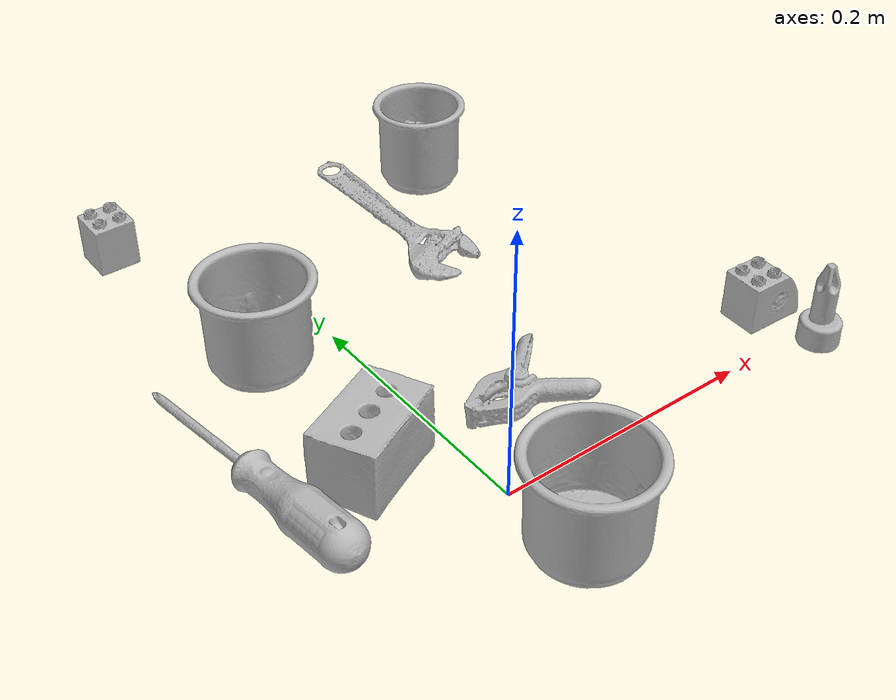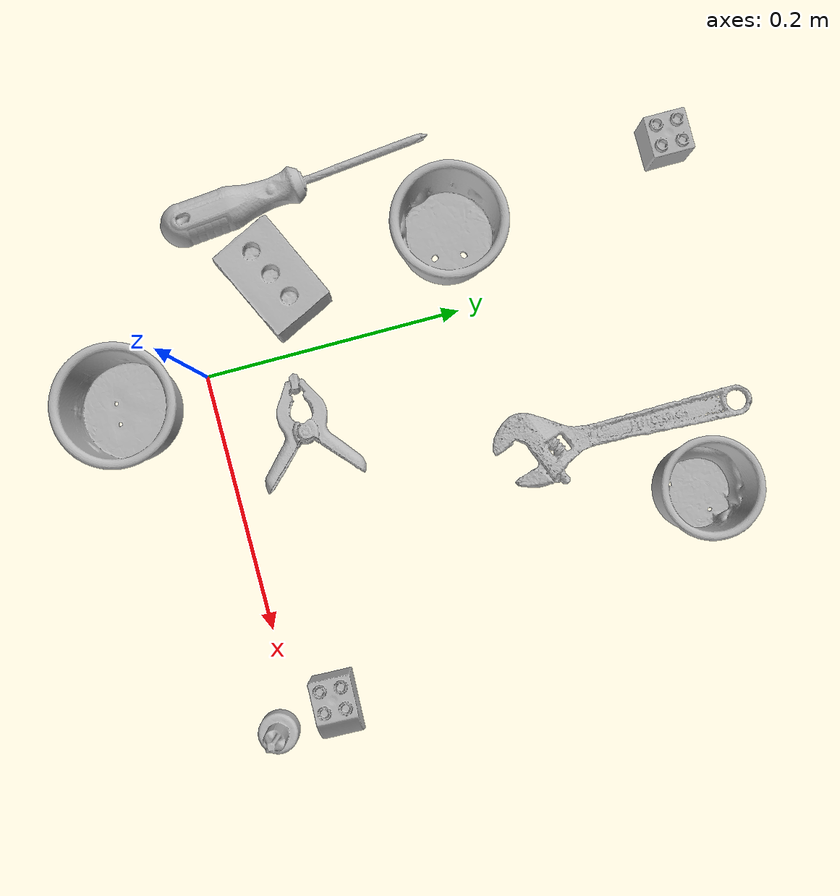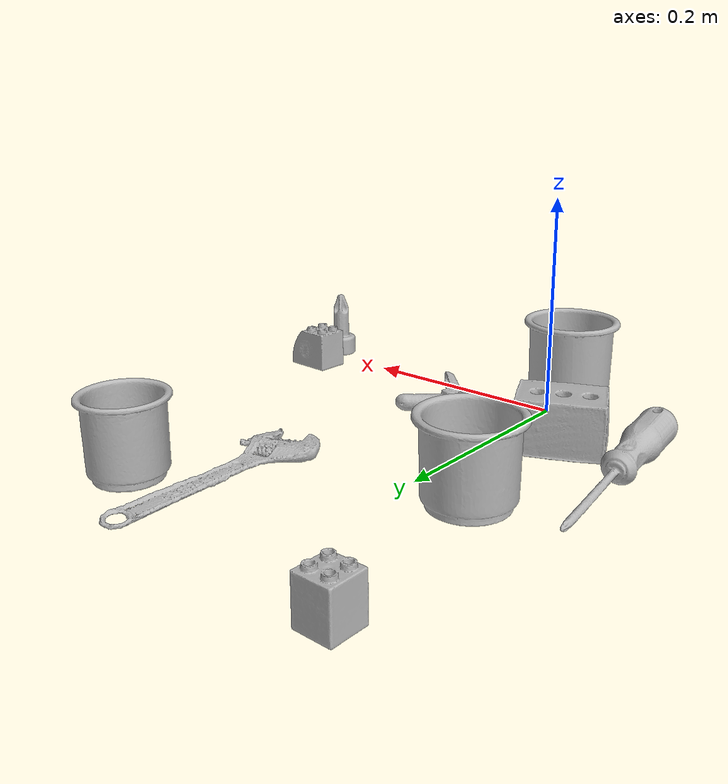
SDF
<sdf version="1.4">
  <world name="default">
    <light name="light1" type="point">
      <pose>0 0 1 0 0 0</pose>
      <diffuse>3 3 3 1</diffuse>
      <specular>3 3 3 1</specular>
    </light>
    <light name="light2" type="point">
      <pose>0 0.5 2 0 0 0</pose>
      <diffuse>1 1 1 1</diffuse>
      <specular>1 1 1 1</specular>
    </light>
    <light name="light3" type="point">
      <pose>0 0.5 2 0 0 0</pose>
      <diffuse>3 3 3 1</diffuse>
      <specular>3 3 3 1</specular>
    </light>
    <scene>
      <ambient>0.7 0.7 0.7</ambient>
    </scene>
    <model name="cup1">
      <link name="link_cup1">
        <collision name="default">
          <geometry>
            <mesh>
              <uri>model://h_cups/collision_meshes/collision.obj</uri>
              <scale>1.0 1.0 1.0</scale>
            </mesh>
          </geometry>
          <surface>
            <friction>
              <ode>
                <mu>0.5</mu>
                <mu2>0.5</mu2>
              </ode>
            </friction>
          <contact>
        <ode>
            <max_vel>0</max_vel>
            <min_depth>0.0001</min_depth>
            <kp>1e8</kp>
        </ode>
    </contact></surface>
        </collision>
        <visual name="default">
          <geometry>
            <mesh>
              <uri>model://h_cups/visual_meshes/visual.dae</uri>
              <scale>1.0 1.0 1.0</scale>
            </mesh>
          </geometry>
        </visual>
        <inertial>
          <mass>0.09017354249954224</mass>
          <pose>-2.702734127524309e-05 0.00023018653155304492 -0.0018405391601845622 -0.024362361674121313 0.06545247408237653 0.12884890922354367</pose>
          <inertia>
            <ixx>0.00011645493</ixx>
            <iyy>0.000115065246</iyy>
            <izz>0.00012212929</izz>
            <ixy>0</ixy>
            <ixz>0</ixz>
            <iyz>0</iyz>
          </inertia>
        </inertial>
      </link>
      <pose>0.011280590668320656 -0.06068877875804901 0.037757985293865204 -2.1988300936124287e-08 -3.644768022607362e-08 1.4375406145162852</pose>
    </model>
    <model name="cup2">
      <link name="link_cup2">
        <collision name="default">
          <geometry>
            <mesh>
              <uri>model://g_cups/collision_meshes/collision.obj</uri>
              <scale>1.0 1.0 1.0</scale>
            </mesh>
          </geometry>
          <surface>
            <friction>
              <ode>
                <mu>0.5</mu>
                <mu2>0.5</mu2>
              </ode>
            </friction>
          <contact>
        <ode>
            <max_vel>0</max_vel>
            <min_depth>0.0001</min_depth>
            <kp>1e8</kp>
        </ode>
    </contact></surface>
        </collision>
        <visual name="default">
          <geometry>
            <mesh>
              <uri>model://g_cups/visual_meshes/visual.dae</uri>
              <scale>1.0 1.0 1.0</scale>
            </mesh>
          </geometry>
        </visual>
        <inertial>
          <mass>0.07892031967639923</mass>
          <pose>-0.0007946275873109698 -4.206384619465098e-05 -0.0021329368464648724 -0.21381953376637775 -0.31410844314425407 0.31119468358147234</pose>
          <inertia>
            <ixx>9.211769e-05</ixx>
            <iyy>9.180432e-05</iyy>
            <izz>9.541806e-05</izz>
            <ixy>0</ixy>
            <ixz>0</ixz>
            <iyz>0</iyz>
          </inertia>
        </inertial>
      </link>
      <pose>-0.056018054485321045 0.20577166974544525 0.037202995270490646 -1.3800494776749856e-07 -6.885260028406047e-07 1.3193647543656402</pose>
    </model>
    <model name="cup3">
      <link name="link_cup3">
        <collision name="default">
          <geometry>
            <mesh>
              <uri>model://e_cups/collision_meshes/collision.obj</uri>
              <scale>1.0 1.0 1.0</scale>
            </mesh>
          </geometry>
          <surface>
            <friction>
              <ode>
                <mu>0.5</mu>
                <mu2>0.5</mu2>
              </ode>
            </friction>
          <contact>
        <ode>
            <max_vel>0</max_vel>
            <min_depth>0.0001</min_depth>
            <kp>1e8</kp>
        </ode>
    </contact></surface>
        </collision>
        <visual name="default">
          <geometry>
            <mesh>
              <uri>model://e_cups/visual_meshes/visual.dae</uri>
              <scale>1.0 1.0 1.0</scale>
            </mesh>
          </geometry>
        </visual>
        <inertial>
          <mass>0.08743876963853836</mass>
          <pose>0.0011355745373293757 0.0028797851409763098 -0.0038829741533845663 0.6952398618358687 0.08767880823198544 -0.5235243888876825</pose>
          <inertia>
            <ixx>7.709911e-05</ixx>
            <iyy>8.05796e-05</iyy>
            <izz>7.3715666e-05</izz>
            <ixy>0</ixy>
            <ixz>0</ixz>
            <iyz>0</iyz>
          </inertia>
        </inertial>
      </link>
      <pose>0.17816337943077087 0.3377567231655121 0.035599950700998306 2.9069218984948846e-06 -1.6282612310965565e-06 1.110654071683451</pose>
    </model>
    <model name="toy1">
      <link name="link_toy1">
        <collision name="default">
          <geometry>
            <mesh>
              <uri>model://d_lego_duplo/collision_meshes/collision.obj</uri>
              <scale>1.0 1.0 1.0</scale>
            </mesh>
          </geometry>
          <surface>
            <friction>
              <ode>
                <mu>0.5</mu>
                <mu2>0.5</mu2>
              </ode>
            </friction>
          <contact>
        <ode>
            <max_vel>0</max_vel>
            <min_depth>0.0001</min_depth>
            <kp>1e8</kp>
        </ode>
    </contact></surface>
        </collision>
        <visual name="default">
          <geometry>
            <mesh>
              <uri>model://d_lego_duplo/visual_meshes/visual.dae</uri>
              <scale>1.0 1.0 1.0</scale>
            </mesh>
          </geometry>
        </visual>
        <inertial>
          <mass>0.04292278364300728</mass>
          <pose>0.002830562647432089 0.00016366151976399124 0.0008589805802330375 0.08010895821025366 -0.3835521883517419 0.0010296961053417666</pose>
          <inertia>
            <ixx>8.309218e-06</ixx>
            <iyy>1.1793034e-05</iyy>
            <izz>1.1372727e-05</izz>
            <ixy>0</ixy>
            <ixz>0</ixz>
            <iyz>0</iyz>
          </inertia>
        </inertial>
      </link>
      <pose>0.2658791244029999 0.034184087067842484 0.02170780673623085 0.002157465205607535 4.279281584919789e-06 3.109942454804178</pose>
    </model>
    <model name="toy2">
      <link name="link_toy2">
        <collision name="default">
          <geometry>
            <mesh>
              <uri>model://foam_brick/collision_meshes/collision.obj</uri>
              <scale>1.0 1.0 1.0</scale>
            </mesh>
          </geometry>
          <surface>
            <friction>
              <ode>
                <mu>0.5</mu>
                <mu2>0.5</mu2>
              </ode>
            </friction>
          <contact>
        <ode>
            <max_vel>0</max_vel>
            <min_depth>0.0001</min_depth>
            <kp>1e8</kp>
        </ode>
    </contact></surface>
        </collision>
        <visual name="default">
          <geometry>
            <mesh>
              <uri>model://foam_brick/visual_meshes/visual.dae</uri>
              <scale>1.0 1.0 1.0</scale>
            </mesh>
          </geometry>
        </visual>
        <inertial>
          <mass>0.21218973398208618</mass>
          <pose>-0.0002522472059354186 0.00034584320383146405 -0.0002532101352699101 -0.2940188212014215 0.017274433063530492 -0.0007449861184219897</pose>
          <inertia>
            <ixx>9.268843e-05</ixx>
            <iyy>0.00014798183</iyy>
            <izz>0.00014986254</izz>
            <ixy>0</ixy>
            <ixz>0</ixz>
            <iyz>0</iyz>
          </inertia>
        </inertial>
      </link>
      <pose>-0.05515178665518761 0.07009939849376678 0.025922810658812523 0.013416543862815012 0.004152967444597556 -2.700463558379215</pose>
    </model>
    <model name="toy3">
      <link name="link_toy3">
        <collision name="default">
          <geometry>
            <mesh>
              <uri>model://f_lego_duplo/collision_meshes/collision.obj</uri>
              <scale>1.0 1.0 1.0</scale>
            </mesh>
          </geometry>
          <surface>
            <friction>
              <ode>
                <mu>0.5</mu>
                <mu2>0.5</mu2>
              </ode>
            </friction>
          <contact>
        <ode>
            <max_vel>0</max_vel>
            <min_depth>0.0001</min_depth>
            <kp>1e8</kp>
        </ode>
    </contact></surface>
        </collision>
        <visual name="default">
          <geometry>
            <mesh>
              <uri>model://f_lego_duplo/visual_meshes/visual.dae</uri>
              <scale>1.0 1.0 1.0</scale>
            </mesh>
          </geometry>
        </visual>
        <inertial>
          <mass>0.024021470919251442</mass>
          <pose>2.3694197807344608e-05 0.00013393140397965908 0.0018837875686585903 0.02983869554967358 -0.014424868856459862 -0.6756716113514201</pose>
          <inertia>
            <ixx>5.075869e-06</ixx>
            <iyy>5.1210886e-06</iyy>
            <izz>4.4060694e-06</izz>
            <ixy>0</ixy>
            <ixz>0</ixz>
            <iyz>0</iyz>
          </inertia>
        </inertial>
      </link>
      <pose>-0.08349733054637909 0.38389521837234497 0.02187100052833557 5.3625487257185875e-06 6.6216469006562436e-06 1.570802797689281</pose>
    </model>
    <model name="toy4">
      <link name="link_toy4">
        <collision name="default">
          <geometry>
            <mesh>
              <uri>model://d_toy_airplane/collision_meshes/collision.obj</uri>
              <scale>1.0 1.0 1.0</scale>
            </mesh>
          </geometry>
          <surface>
            <friction>
              <ode>
                <mu>0.5</mu>
                <mu2>0.5</mu2>
              </ode>
            </friction>
          <contact>
        <ode>
            <max_vel>0</max_vel>
            <min_depth>0.0001</min_depth>
            <kp>1e8</kp>
        </ode>
    </contact></surface>
        </collision>
        <visual name="default">
          <geometry>
            <mesh>
              <uri>model://d_toy_airplane/visual_meshes/visual.dae</uri>
              <scale>1.0 1.0 1.0</scale>
            </mesh>
          </geometry>
        </visual>
        <inertial>
          <mass>0.024586454033851624</mass>
          <pose>9.410288475919515e-05 -5.809331560158171e-05 -0.011728096753358841 0.0002662237897190017 0.004679022855495211 0.5193045098973154</pose>
          <inertia>
            <ixx>7.370539e-06</ixx>
            <iyy>7.376099e-06</iyy>
            <izz>2.2252145e-06</izz>
            <ixy>0</ixy>
            <ixz>0</ixz>
            <iyz>0</iyz>
          </inertia>
        </inertial>
      </link>
      <pose>0.27456095814704895 -0.01371260266751051 0.03333945944905281 0.00020646780858924106 -2.2670244709572336e-05 1.4302717714765707</pose>
    </model>
    <model name="hardware1">
      <link name="link_hardware1">
        <collision name="default">
          <geometry>
            <mesh>
              <uri>model://phillips_screwdriver/collision_meshes/collision.obj</uri>
              <scale>1.0 1.0 1.0</scale>
            </mesh>
          </geometry>
          <surface>
            <friction>
              <ode>
                <mu>0.5</mu>
                <mu2>0.5</mu2>
              </ode>
            </friction>
          <contact>
        <ode>
            <max_vel>0</max_vel>
            <min_depth>0.0001</min_depth>
            <kp>1e8</kp>
        </ode>
    </contact></surface>
        </collision>
        <visual name="default">
          <geometry>
            <mesh>
              <uri>model://phillips_screwdriver/visual_meshes/visual.dae</uri>
              <scale>1.0 1.0 1.0</scale>
            </mesh>
          </geometry>
        </visual>
        <inertial>
          <mass>0.10962587594985962</mass>
          <pose>-0.04777182266116142 0.0010362300090491772 -0.00045555492397397757 -0.1572763288958183 0.005850995451121224 -0.002156747064170485</pose>
          <inertia>
            <ixx>1.2879916e-05</ixx>
            <iyy>0.00016149164</iyy>
            <izz>0.00016162884</izz>
            <ixy>0</ixy>
            <ixz>0</ixz>
            <iyz>0</iyz>
          </inertia>
        </inertial>
      </link>
      <pose>-0.12472304701805115 0.10129489004611969 0.015485579147934914 -1.694550503558508 0.045438258758472246 1.683226336566492</pose>
    </model>
    <model name="hardware2">
      <link name="link_hardware2">
        <collision name="default">
          <geometry>
            <mesh>
              <uri>model://adjustable_wrench/collision_meshes/collision.obj</uri>
              <scale>1.0 1.0 1.0</scale>
            </mesh>
          </geometry>
          <surface>
            <friction>
              <ode>
                <mu>0.5</mu>
                <mu2>0.5</mu2>
              </ode>
            </friction>
          <contact>
        <ode>
            <max_vel>0</max_vel>
            <min_depth>0.0001</min_depth>
            <kp>1e8</kp>
        </ode>
    </contact></surface>
        </collision>
        <visual name="default">
          <geometry>
            <mesh>
              <uri>model://adjustable_wrench/visual_meshes/visual.dae</uri>
              <scale>1.0 1.0 1.0</scale>
            </mesh>
          </geometry>
        </visual>
        <inertial>
          <mass>0.02999398298561573</mass>
          <pose>0.03740980848670006 -0.002896887483075261 -0.001114922808483243 -0.014473357351062987 0.006656019865341655 -0.010954188906160397</pose>
          <inertia>
            <ixx>6.138701e-06</ixx>
            <iyy>7.184631e-05</iyy>
            <izz>7.765895e-05</izz>
            <ixy>0</ixy>
            <ixz>0</ixz>
            <iyz>0</iyz>
          </inertia>
        </inertial>
      </link>
      <pose>0.12265609204769135 0.2948688268661499 0.0061250487342476845 0.04675842897676713 -0.029270262307962074 -1.6051514239749345</pose>
    </model>
    <model name="hardware3">
      <link name="link_hardware3">
        <collision name="default">
          <geometry>
            <mesh>
              <uri>model://medium_clamp/collision_meshes/collision.obj</uri>
              <scale>1.0 1.0 1.0</scale>
            </mesh>
          </geometry>
          <surface>
            <friction>
              <ode>
                <mu>0.5</mu>
                <mu2>0.5</mu2>
              </ode>
            </friction>
          <contact>
        <ode>
            <max_vel>0</max_vel>
            <min_depth>0.0001</min_depth>
            <kp>1e8</kp>
        </ode>
    </contact></surface>
        </collision>
        <visual name="default">
          <geometry>
            <mesh>
              <uri>model://medium_clamp/visual_meshes/visual.dae</uri>
              <scale>1.0 1.0 1.0</scale>
            </mesh>
          </geometry>
        </visual>
        <inertial>
          <mass>0.038817502558231354</mass>
          <pose>0.005390993785113096 0.0003953237028326839 -0.0001222158462041989 -0.0012269117309439718 0.002584502422387493 0.03820772500943274</pose>
          <inertia>
            <ixx>1.05752815e-05</ixx>
            <iyy>1.539003e-05</iyy>
            <izz>2.3705257e-05</izz>
            <ixy>0</ixy>
            <ixz>0</ixz>
            <iyz>0</iyz>
          </inertia>
        </inertial>
      </link>
      <pose>0.06272856891155243 0.0641605406999588 0.013533583842217922 0.07742620529709657 0.08544997495762173 3.1132723231483195</pose>
    </model>
  <physics type="ode">
      <max_contacts>50</max_contacts>
      <ode>
        <solver>
          <type>quick</type>
          <iters>75</iters>
        </solver>
        <constraints>
          <contact_max_correcting_vel>0</contact_max_correcting_vel>
          <contact_surface_layer>0</contact_surface_layer>
        </constraints>
      </ode>
    </physics></world>
</sdf>
